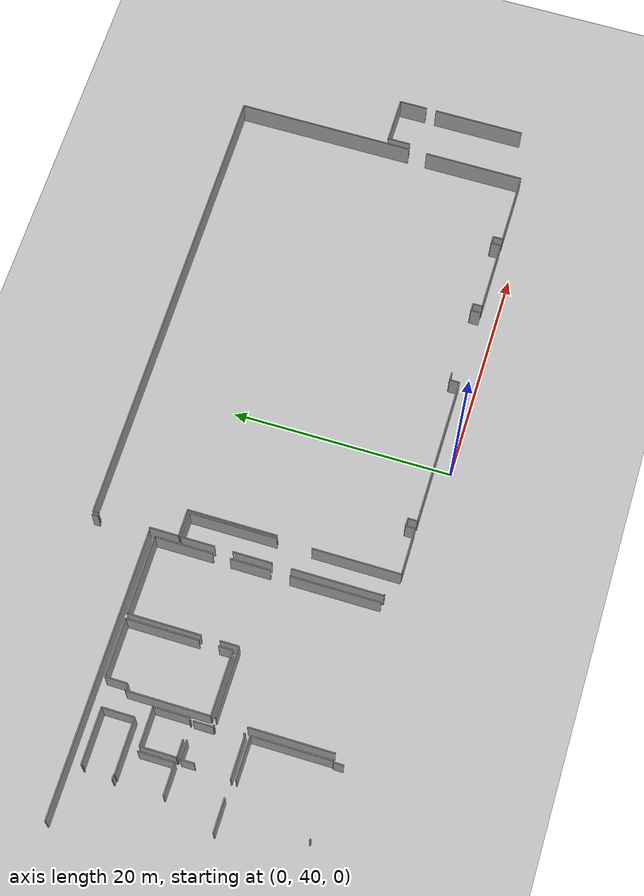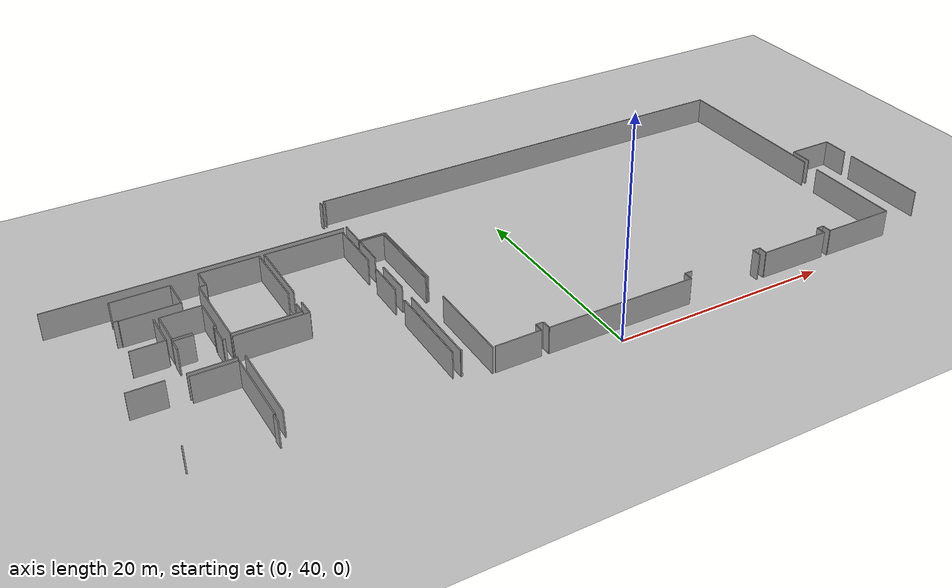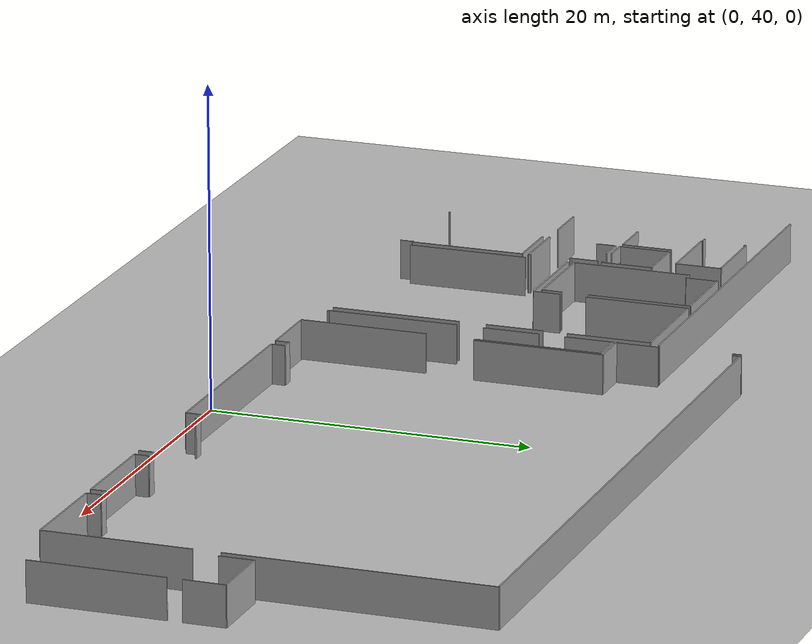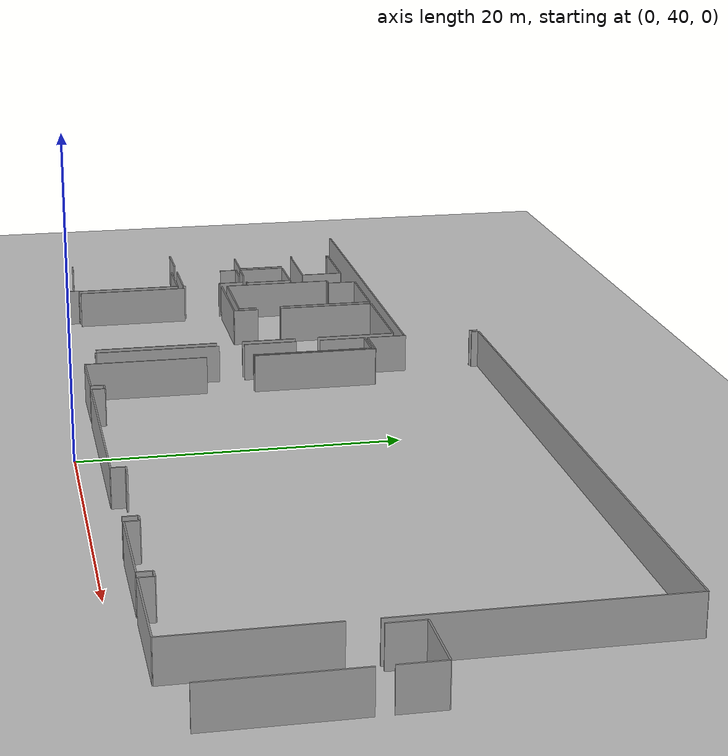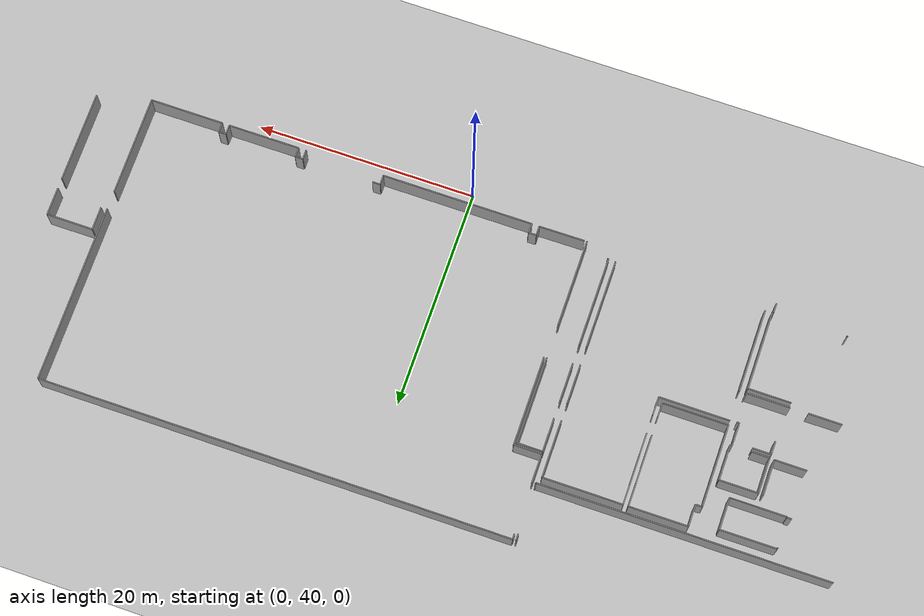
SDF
<sdf version="1.6">
 <world name="default">
  <model name="ground_plane">
   <static>1</static>
   <link name="link">
    <collision name="collision">
     <geometry><plane><normal>0 0 1</normal><size>100 100</size></plane></geometry>
     <surface><friction><ode><mu>100</mu><mu2>50</mu2></ode></friction></surface>
    </collision>
    <visual name="visual">
     <cast_shadows>0</cast_shadows>
     <geometry><plane><normal>0 0 1</normal><size>100 100</size></plane></geometry>
     <material>
      <script><uri>file://media/materials/scripts/gazebo.material</uri><name>Gazebo/Grey</name></script>
     </material>
    </visual>
   </link>
  </model>
  <model name="0510035520_A_40_1_103">
   <static>1</static>
   <link name="Wall_127">
    <collision name="Wall_127_Collision">
     <geometry><box><size>0.571569977348 0.1 2.5</size></box></geometry>
     <pose>0.285784988674 0 1.25 0 0 0</pose>
    </collision>
    <visual name="Wall_127_Visual">
     <pose>0.285784988674 0 1.25 0 0 0</pose>
     <geometry><box><size>0.571569977348 0.1 2.5</size></box></geometry>
     <material>
      <script><uri>file://media/materials/scripts/gazebo.material</uri><name>Gazebo/Grey</name></script>
      <ambient>1 1 1 1</ambient>
     </material>
    </visual>
    <pose>98.6663790204 -0.120303805179 0 0 0 -1.57079632679</pose>
   </link>
   <link name="Wall_128">
    <collision name="Wall_128_Collision">
     <geometry><box><size>0.0720807609089 0.1 2.5</size></box></geometry>
     <pose>0.0360403804544 0 1.25 0 0 0</pose>
    </collision>
    <visual name="Wall_128_Visual">
     <pose>0.0360403804544 0 1.25 0 0 0</pose>
     <geometry><box><size>0.0720807609089 0.1 2.5</size></box></geometry>
     <material>
      <script><uri>file://media/materials/scripts/gazebo.material</uri><name>Gazebo/Grey</name></script>
      <ambient>1 1 1 1</ambient>
     </material>
    </visual>
    <pose>98.6663790204 -5.25428138146 0 0 0 -1.57079632679</pose>
   </link>
   <link name="Wall_129">
    <collision name="Wall_129_Collision">
     <geometry><box><size>26.1229306921 0.1 2.5</size></box></geometry>
     <pose>13.061465346 0 1.25 0 0 0</pose>
    </collision>
    <visual name="Wall_129_Visual">
     <pose>13.061465346 0 1.25 0 0 0</pose>
     <geometry><box><size>26.1229306921 0.1 2.5</size></box></geometry>
     <material>
      <script><uri>file://media/materials/scripts/gazebo.material</uri><name>Gazebo/Grey</name></script>
      <ambient>1 1 1 1</ambient>
     </material>
    </visual>
    <pose>98.6663790204 -5.32636214237 0 0 0 3.14159265359</pose>
   </link>
   <link name="Wall_132">
    <collision name="Wall_132_Collision">
     <geometry><box><size>8.12253729355 0.1 2.5</size></box></geometry>
     <pose>4.06126864677 0 1.25 0 0 0</pose>
    </collision>
    <visual name="Wall_132_Visual">
     <pose>4.06126864677 0 1.25 0 0 0</pose>
     <geometry><box><size>8.12253729355 0.1 2.5</size></box></geometry>
     <material>
      <script><uri>file://media/materials/scripts/gazebo.material</uri><name>Gazebo/Grey</name></script>
      <ambient>1 1 1 1</ambient>
     </material>
    </visual>
    <pose>101.475244446 -15.9993908668 0 0 0 1.57079632679</pose>
   </link>
   <link name="Wall_133">
    <collision name="Wall_133_Collision">
     <geometry><box><size>2.49769988769 0.1 2.5</size></box></geometry>
     <pose>1.24884994385 0 1.25 0 0 0</pose>
    </collision>
    <visual name="Wall_133_Visual">
     <pose>1.24884994385 0 1.25 0 0 0</pose>
     <geometry><box><size>2.49769988769 0.1 2.5</size></box></geometry>
     <material>
      <script><uri>file://media/materials/scripts/gazebo.material</uri><name>Gazebo/Grey</name></script>
      <ambient>1 1 1 1</ambient>
     </material>
    </visual>
    <pose>101.475244446 -7.87685357326 0 0 0 3.14159265359</pose>
   </link>
   <link name="Wall_134">
    <collision name="Wall_134_Collision">
     <geometry><box><size>2.64465326997 0.1 2.5</size></box></geometry>
     <pose>1.32232663498 0 1.25 0 0 0</pose>
    </collision>
    <visual name="Wall_134_Visual">
     <pose>1.32232663498 0 1.25 0 0 0</pose>
     <geometry><box><size>2.64465326997 0.1 2.5</size></box></geometry>
     <material>
      <script><uri>file://media/materials/scripts/gazebo.material</uri><name>Gazebo/Grey</name></script>
      <ambient>1 1 1 1</ambient>
     </material>
    </visual>
    <pose>98.9775445587 -7.87685357326 0 0 0 1.57079632679</pose>
   </link>
   <link name="Wall_135">
    <collision name="Wall_135_Collision">
     <geometry><box><size>0.496697355981 0.1 2.5</size></box></geometry>
     <pose>0.248348677991 0 1.25 0 0 0</pose>
    </collision>
    <visual name="Wall_135_Visual">
     <pose>0.248348677991 0 1.25 0 0 0</pose>
     <geometry><box><size>0.496697355981 0.1 2.5</size></box></geometry>
     <material>
      <script><uri>file://media/materials/scripts/gazebo.material</uri><name>Gazebo/Grey</name></script>
      <ambient>1 1 1 1</ambient>
     </material>
    </visual>
    <pose>98.9775445587 -0.608371774291 0 0 0 1.57079632679</pose>
   </link>
   <link name="Wall_136">
    <collision name="Wall_136_Collision">
     <geometry><box><size>42.7565814938 0.1 2.5</size></box></geometry>
     <pose>21.3782907469 0 1.25 0 0 0</pose>
    </collision>
    <visual name="Wall_136_Visual">
     <pose>21.3782907469 0 1.25 0 0 0</pose>
     <geometry><box><size>42.7565814938 0.1 2.5</size></box></geometry>
     <material>
      <script><uri>file://media/materials/scripts/gazebo.material</uri><name>Gazebo/Grey</name></script>
      <ambient>1 1 1 1</ambient>
     </material>
    </visual>
    <pose>98.9775445587 -0.11167441831 0 0 0 0.0</pose>
   </link>
   <link name="Wall_137">
    <collision name="Wall_137_Collision">
     <geometry><box><size>16.2113184561 0.1 2.5</size></box></geometry>
     <pose>8.10565922805 0 1.25 0 0 0</pose>
    </collision>
    <visual name="Wall_137_Visual">
     <pose>8.10565922805 0 1.25 0 0 0</pose>
     <geometry><box><size>16.2113184561 0.1 2.5</size></box></geometry>
     <material>
      <script><uri>file://media/materials/scripts/gazebo.material</uri><name>Gazebo/Grey</name></script>
      <ambient>1 1 1 1</ambient>
     </material>
    </visual>
    <pose>141.734126052 -0.11167441831 0 0 0 -1.57079632679</pose>
   </link>
   <link name="Wall_138">
    <collision name="Wall_138_Collision">
     <geometry><box><size>9.09867323177 0.1 2.5</size></box></geometry>
     <pose>4.54933661588 0 1.25 0 0 0</pose>
    </collision>
    <visual name="Wall_138_Visual">
     <pose>4.54933661588 0 1.25 0 0 0</pose>
     <geometry><box><size>9.09867323177 0.1 2.5</size></box></geometry>
     <material>
      <script><uri>file://media/materials/scripts/gazebo.material</uri><name>Gazebo/Grey</name></script>
      <ambient>1 1 1 1</ambient>
     </material>
    </visual>
    <pose>141.734126052 -18.0090227854 0 0 0 -1.57079632679</pose>
   </link>
   <link name="Wall_139">
    <collision name="Wall_139_Collision">
     <geometry><box><size>6.67330791048 0.1 2.5</size></box></geometry>
     <pose>3.33665395524 0 1.25 0 0 0</pose>
    </collision>
    <visual name="Wall_139_Visual">
     <pose>3.33665395524 0 1.25 0 0 0</pose>
     <geometry><box><size>6.67330791048 0.1 2.5</size></box></geometry>
     <material>
      <script><uri>file://media/materials/scripts/gazebo.material</uri><name>Gazebo/Grey</name></script>
      <ambient>1 1 1 1</ambient>
     </material>
    </visual>
    <pose>141.734126052 -27.1076960172 0 0 0 3.14159265359</pose>
   </link>
   <link name="Wall_140">
    <collision name="Wall_140_Collision">
     <geometry><box><size>0.878167016707 0.1 2.5</size></box></geometry>
     <pose>0.439083508353 0 1.25 0 0 0</pose>
    </collision>
    <visual name="Wall_140_Visual">
     <pose>0.439083508353 0 1.25 0 0 0</pose>
     <geometry><box><size>0.878167016707 0.1 2.5</size></box></geometry>
     <material>
      <script><uri>file://media/materials/scripts/gazebo.material</uri><name>Gazebo/Grey</name></script>
      <ambient>1 1 1 1</ambient>
     </material>
    </visual>
    <pose>135.060818142 -27.1076960172 0 0 0 1.57079632679</pose>
   </link>
   <link name="Wall_141">
    <collision name="Wall_141_Collision">
     <geometry><box><size>0.672076953826 0.1 2.5</size></box></geometry>
     <pose>0.336038476913 0 1.25 0 0 0</pose>
    </collision>
    <visual name="Wall_141_Visual">
     <pose>0.336038476913 0 1.25 0 0 0</pose>
     <geometry><box><size>0.672076953826 0.1 2.5</size></box></geometry>
     <material>
      <script><uri>file://media/materials/scripts/gazebo.material</uri><name>Gazebo/Grey</name></script>
      <ambient>1 1 1 1</ambient>
     </material>
    </visual>
    <pose>135.060818142 -26.2295290005 0 0 0 3.14159265359</pose>
   </link>
   <link name="Wall_142">
    <collision name="Wall_142_Collision">
     <geometry><box><size>0.87131426831 0.1 2.5</size></box></geometry>
     <pose>0.435657134155 0 1.25 0 0 0</pose>
    </collision>
    <visual name="Wall_142_Visual">
     <pose>0.435657134155 0 1.25 0 0 0</pose>
     <geometry><box><size>0.87131426831 0.1 2.5</size></box></geometry>
     <material>
      <script><uri>file://media/materials/scripts/gazebo.material</uri><name>Gazebo/Grey</name></script>
      <ambient>1 1 1 1</ambient>
     </material>
    </visual>
    <pose>134.388741188 -26.2295290005 0 0 0 -1.57079632679</pose>
   </link>
   <link name="Wall_143">
    <collision name="Wall_143_Collision">
     <geometry><box><size>6.50478106103 0.1 2.5</size></box></geometry>
     <pose>3.25239053052 0 1.25 0 0 0</pose>
    </collision>
    <visual name="Wall_143_Visual">
     <pose>3.25239053052 0 1.25 0 0 0</pose>
     <geometry><box><size>6.50478106103 0.1 2.5</size></box></geometry>
     <material>
      <script><uri>file://media/materials/scripts/gazebo.material</uri><name>Gazebo/Grey</name></script>
      <ambient>1 1 1 1</ambient>
     </material>
    </visual>
    <pose>134.388741188 -27.1008432688 0 0 0 3.14159265359</pose>
   </link>
   <link name="Wall_144">
    <collision name="Wall_144_Collision">
     <geometry><box><size>0.854563105564 0.1 2.5</size></box></geometry>
     <pose>0.427281552782 0 1.25 0 0 0</pose>
    </collision>
    <visual name="Wall_144_Visual">
     <pose>0.427281552782 0 1.25 0 0 0</pose>
     <geometry><box><size>0.854563105564 0.1 2.5</size></box></geometry>
     <material>
      <script><uri>file://media/materials/scripts/gazebo.material</uri><name>Gazebo/Grey</name></script>
      <ambient>1 1 1 1</ambient>
     </material>
    </visual>
    <pose>127.883960127 -27.1008432688 0 0 0 1.57079632679</pose>
   </link>
   <link name="Wall_145">
    <collision name="Wall_145_Collision">
     <geometry><box><size>0.688574311077 0.1 2.5</size></box></geometry>
     <pose>0.344287155538 0 1.25 0 0 0</pose>
    </collision>
    <visual name="Wall_145_Visual">
     <pose>0.344287155538 0 1.25 0 0 0</pose>
     <geometry><box><size>0.688574311077 0.1 2.5</size></box></geometry>
     <material>
      <script><uri>file://media/materials/scripts/gazebo.material</uri><name>Gazebo/Grey</name></script>
      <ambient>1 1 1 1</ambient>
     </material>
    </visual>
    <pose>127.883960127 -26.2462801632 0 0 0 3.14159265359</pose>
   </link>
   <link name="Wall_146">
    <collision name="Wall_146_Collision">
     <geometry><box><size>0.887811625561 0.1 2.5</size></box></geometry>
     <pose>0.44390581278 0 1.25 0 0 0</pose>
    </collision>
    <visual name="Wall_146_Visual">
     <pose>0.44390581278 0 1.25 0 0 0</pose>
     <geometry><box><size>0.887811625561 0.1 2.5</size></box></geometry>
     <material>
      <script><uri>file://media/materials/scripts/gazebo.material</uri><name>Gazebo/Grey</name></script>
      <ambient>1 1 1 1</ambient>
     </material>
    </visual>
    <pose>127.195385816 -26.2462801632 0 0 0 -1.57079632679</pose>
   </link>
   <link name="Wall_149">
    <collision name="Wall_149_Collision">
     <geometry><box><size>0.7068483068 0.1 2.5</size></box></geometry>
     <pose>0.3534241534 0 1.25 0 0 0</pose>
    </collision>
    <visual name="Wall_149_Visual">
     <pose>0.3534241534 0 1.25 0 0 0</pose>
     <geometry><box><size>0.7068483068 0.1 2.5</size></box></geometry>
     <material>
      <script><uri>file://media/materials/scripts/gazebo.material</uri><name>Gazebo/Grey</name></script>
      <ambient>1 1 1 1</ambient>
     </material>
    </visual>
    <pose>120.692127588 -26.2379045818 0 0 0 3.14159265359</pose>
   </link>
   <link name="Wall_150">
    <collision name="Wall_150_Collision">
     <geometry><box><size>0.87131426831 0.1 2.5</size></box></geometry>
     <pose>0.435657134155 0 1.25 0 0 0</pose>
    </collision>
    <visual name="Wall_150_Visual">
     <pose>0.435657134155 0 1.25 0 0 0</pose>
     <geometry><box><size>0.87131426831 0.1 2.5</size></box></geometry>
     <material>
      <script><uri>file://media/materials/scripts/gazebo.material</uri><name>Gazebo/Grey</name></script>
      <ambient>1 1 1 1</ambient>
     </material>
    </visual>
    <pose>119.985279281 -26.2379045818 0 0 0 -1.57079632679</pose>
   </link>
   <link name="Wall_151">
    <collision name="Wall_151_Collision">
     <geometry><box><size>13.6981364331 0.1 2.5</size></box></geometry>
     <pose>6.84906821657 0 1.25 0 0 0</pose>
    </collision>
    <visual name="Wall_151_Visual">
     <pose>6.84906821657 0 1.25 0 0 0</pose>
     <geometry><box><size>13.6981364331 0.1 2.5</size></box></geometry>
     <material>
      <script><uri>file://media/materials/scripts/gazebo.material</uri><name>Gazebo/Grey</name></script>
      <ambient>1 1 1 1</ambient>
     </material>
    </visual>
    <pose>119.985279281 -27.1092188501 0 0 0 3.14159265359</pose>
   </link>
   <link name="Wall_152">
    <collision name="Wall_152_Collision">
     <geometry><box><size>0.854563105564 0.1 2.5</size></box></geometry>
     <pose>0.427281552782 0 1.25 0 0 0</pose>
    </collision>
    <visual name="Wall_152_Visual">
     <pose>0.427281552782 0 1.25 0 0 0</pose>
     <geometry><box><size>0.854563105564 0.1 2.5</size></box></geometry>
     <material>
      <script><uri>file://media/materials/scripts/gazebo.material</uri><name>Gazebo/Grey</name></script>
      <ambient>1 1 1 1</ambient>
     </material>
    </visual>
    <pose>106.287142848 -27.1092188501 0 0 0 1.57079632679</pose>
   </link>
   <link name="Wall_153">
    <collision name="Wall_153_Collision">
     <geometry><box><size>0.69694989245 0.1 2.5</size></box></geometry>
     <pose>0.348474946225 0 1.25 0 0 0</pose>
    </collision>
    <visual name="Wall_153_Visual">
     <pose>0.348474946225 0 1.25 0 0 0</pose>
     <geometry><box><size>0.69694989245 0.1 2.5</size></box></geometry>
     <material>
      <script><uri>file://media/materials/scripts/gazebo.material</uri><name>Gazebo/Grey</name></script>
      <ambient>1 1 1 1</ambient>
     </material>
    </visual>
    <pose>106.287142848 -26.2546557446 0 0 0 3.14159265359</pose>
   </link>
   <link name="Wall_154">
    <collision name="Wall_154_Collision">
     <geometry><box><size>0.837811942818 0.1 2.5</size></box></geometry>
     <pose>0.418905971409 0 1.25 0 0 0</pose>
    </collision>
    <visual name="Wall_154_Visual">
     <pose>0.418905971409 0 1.25 0 0 0</pose>
     <geometry><box><size>0.837811942818 0.1 2.5</size></box></geometry>
     <material>
      <script><uri>file://media/materials/scripts/gazebo.material</uri><name>Gazebo/Grey</name></script>
      <ambient>1 1 1 1</ambient>
     </material>
    </visual>
    <pose>105.590192956 -26.2546557446 0 0 0 -1.57079632679</pose>
   </link>
   <link name="Wall_155">
    <collision name="Wall_155_Collision">
     <geometry><box><size>4.11507875995 0.1 2.5</size></box></geometry>
     <pose>2.05753937997 0 1.25 0 0 0</pose>
    </collision>
    <visual name="Wall_155_Visual">
     <pose>2.05753937997 0 1.25 0 0 0</pose>
     <geometry><box><size>4.11507875995 0.1 2.5</size></box></geometry>
     <material>
      <script><uri>file://media/materials/scripts/gazebo.material</uri><name>Gazebo/Grey</name></script>
      <ambient>1 1 1 1</ambient>
     </material>
    </visual>
    <pose>105.590192956 -27.0924676874 0 0 0 -3.13363624343</pose>
   </link>
   <link name="Wall_157">
    <collision name="Wall_157_Collision">
     <geometry><box><size>2.11115411704 0.1 2.5</size></box></geometry>
     <pose>1.05557705852 0 1.25 0 0 0</pose>
    </collision>
    <visual name="Wall_157_Visual">
     <pose>1.05557705852 0 1.25 0 0 0</pose>
     <geometry><box><size>2.11115411704 0.1 2.5</size></box></geometry>
     <material>
      <script><uri>file://media/materials/scripts/gazebo.material</uri><name>Gazebo/Grey</name></script>
      <ambient>1 1 1 1</ambient>
     </material>
    </visual>
    <pose>142.281838313 -16.2582724729 0 0 0 1.57079632679</pose>
   </link>
   <link name="Wall_158">
    <collision name="Wall_158_Collision">
     <geometry><box><size>4.22053159561 0.1 2.5</size></box></geometry>
     <pose>2.11026579781 0 1.25 0 0 0</pose>
    </collision>
    <visual name="Wall_158_Visual">
     <pose>2.11026579781 0 1.25 0 0 0</pose>
     <geometry><box><size>4.22053159561 0.1 2.5</size></box></geometry>
     <material>
      <script><uri>file://media/materials/scripts/gazebo.material</uri><name>Gazebo/Grey</name></script>
      <ambient>1 1 1 1</ambient>
     </material>
    </visual>
    <pose>142.281838313 -14.1471183558 0 0 0 0.0</pose>
   </link>
   <link name="Wall_159">
    <collision name="Wall_159_Collision">
     <geometry><box><size>2.55125284738 0.1 2.5</size></box></geometry>
     <pose>1.27562642369 0 1.25 0 0 0</pose>
    </collision>
    <visual name="Wall_159_Visual">
     <pose>1.27562642369 0 1.25 0 0 0</pose>
     <geometry><box><size>2.55125284738 0.1 2.5</size></box></geometry>
     <material>
      <script><uri>file://media/materials/scripts/gazebo.material</uri><name>Gazebo/Grey</name></script>
      <ambient>1 1 1 1</ambient>
     </material>
    </visual>
    <pose>146.502369909 -14.1471183558 0 0 0 -1.57079632679</pose>
   </link>
   <link name="Wall_160">
    <collision name="Wall_160_Collision">
     <geometry><box><size>8.33852577078 0.1 2.5</size></box></geometry>
     <pose>4.16926288539 0 1.25 0 0 0</pose>
    </collision>
    <visual name="Wall_160_Visual">
     <pose>4.16926288539 0 1.25 0 0 0</pose>
     <geometry><box><size>8.33852577078 0.1 2.5</size></box></geometry>
     <material>
      <script><uri>file://media/materials/scripts/gazebo.material</uri><name>Gazebo/Grey</name></script>
      <ambient>1 1 1 1</ambient>
     </material>
    </visual>
    <pose>146.502369909 -17.6090253234 0 0 0 -1.57079632679</pose>
   </link>
   <link name="Wall_174">
    <collision name="Wall_174_Collision">
     <geometry><box><size>3.84210760084 0.1 2.5</size></box></geometry>
     <pose>1.92105380042 0 1.25 0 0 0</pose>
    </collision>
    <visual name="Wall_174_Visual">
     <pose>1.92105380042 0 1.25 0 0 0</pose>
     <geometry><box><size>3.84210760084 0.1 2.5</size></box></geometry>
     <material>
      <script><uri>file://media/materials/scripts/gazebo.material</uri><name>Gazebo/Grey</name></script>
      <ambient>1 1 1 1</ambient>
     </material>
    </visual>
    <pose>80.3040589844 -19.0430263767 0 0 0 0.0</pose>
   </link>
   <link name="Wall_175">
    <collision name="Wall_175_Collision">
     <geometry><box><size>7.21162936783 0.1 2.5</size></box></geometry>
     <pose>3.60581468392 0 1.25 0 0 0</pose>
    </collision>
    <visual name="Wall_175_Visual">
     <pose>3.60581468392 0 1.25 0 0 0</pose>
     <geometry><box><size>7.21162936783 0.1 2.5</size></box></geometry>
     <material>
      <script><uri>file://media/materials/scripts/gazebo.material</uri><name>Gazebo/Grey</name></script>
      <ambient>1 1 1 1</ambient>
     </material>
    </visual>
    <pose>84.1461665852 -19.0430263767 0 0 0 -1.57079632679</pose>
   </link>
   <link name="Wall_176">
    <collision name="Wall_176_Collision">
     <geometry><box><size>0.111420612813 0.1 2.5</size></box></geometry>
     <pose>0.0557103064067 0 1.25 0 0 0</pose>
    </collision>
    <visual name="Wall_176_Visual">
     <pose>0.0557103064067 0 1.25 0 0 0</pose>
     <geometry><box><size>0.111420612813 0.1 2.5</size></box></geometry>
     <material>
      <script><uri>file://media/materials/scripts/gazebo.material</uri><name>Gazebo/Grey</name></script>
      <ambient>1 1 1 1</ambient>
     </material>
    </visual>
    <pose>84.1461665852 -26.2546557446 0 0 0 3.14159265359</pose>
   </link>
   <link name="Wall_177">
    <collision name="Wall_177_Collision">
     <geometry><box><size>0.862684881441 0.1 2.5</size></box></geometry>
     <pose>0.431342440721 0 1.25 0 0 0</pose>
    </collision>
    <visual name="Wall_177_Visual">
     <pose>0.431342440721 0 1.25 0 0 0</pose>
     <geometry><box><size>0.862684881441 0.1 2.5</size></box></geometry>
     <material>
      <script><uri>file://media/materials/scripts/gazebo.material</uri><name>Gazebo/Grey</name></script>
      <ambient>1 1 1 1</ambient>
     </material>
    </visual>
    <pose>84.0347459724 -26.2546557446 0 0 0 -1.57079632679</pose>
   </link>
   <link name="Wall_181">
    <collision name="Wall_181_Collision">
     <geometry><box><size>0.112481659409 0.1 2.5</size></box></geometry>
     <pose>0.0562408297047 0 1.25 0 0 0</pose>
    </collision>
    <visual name="Wall_181_Visual">
     <pose>0.0562408297047 0 1.25 0 0 0</pose>
     <geometry><box><size>0.112481659409 0.1 2.5</size></box></geometry>
     <material>
      <script><uri>file://media/materials/scripts/gazebo.material</uri><name>Gazebo/Grey</name></script>
      <ambient>1 1 1 1</ambient>
     </material>
    </visual>
    <pose>77.4967163914 -26.2711531018 0 0 0 3.02171565878</pose>
   </link>
   <link name="Wall_182">
    <collision name="Wall_182_Collision">
     <geometry><box><size>8.1057861308 0.1 2.5</size></box></geometry>
     <pose>4.0528930654 0 1.25 0 0 0</pose>
    </collision>
    <visual name="Wall_182_Visual">
     <pose>4.0528930654 0 1.25 0 0 0</pose>
     <geometry><box><size>8.1057861308 0.1 2.5</size></box></geometry>
     <material>
      <script><uri>file://media/materials/scripts/gazebo.material</uri><name>Gazebo/Grey</name></script>
      <ambient>1 1 1 1</ambient>
     </material>
    </visual>
    <pose>98.3219649622 -26.1795293177 0 0 0 1.57079632679</pose>
   </link>
   <link name="Wall_183">
    <collision name="Wall_183_Collision">
     <geometry><box><size>3.61545929277 0.1 2.5</size></box></geometry>
     <pose>1.80772964639 0 1.25 0 0 0</pose>
    </collision>
    <visual name="Wall_183_Visual">
     <pose>1.80772964639 0 1.25 0 0 0</pose>
     <geometry><box><size>3.61545929277 0.1 2.5</size></box></geometry>
     <material>
      <script><uri>file://media/materials/scripts/gazebo.material</uri><name>Gazebo/Grey</name></script>
      <ambient>1 1 1 1</ambient>
     </material>
    </visual>
    <pose>98.3219649622 -16.3554799779 0 0 0 1.57079632679</pose>
   </link>
   <link name="Wall_184">
    <collision name="Wall_184_Collision">
     <geometry><box><size>5.23423074727 0.1 2.5</size></box></geometry>
     <pose>2.61711537363 0 1.25 0 0 0</pose>
    </collision>
    <visual name="Wall_184_Visual">
     <pose>2.61711537363 0 1.25 0 0 0</pose>
     <geometry><box><size>5.23423074727 0.1 2.5</size></box></geometry>
     <material>
      <script><uri>file://media/materials/scripts/gazebo.material</uri><name>Gazebo/Grey</name></script>
      <ambient>1 1 1 1</ambient>
     </material>
    </visual>
    <pose>98.3219649622 -11.1897767146 0 0 0 1.57079632679</pose>
   </link>
   <link name="Wall_185">
    <collision name="Wall_185_Collision">
     <geometry><box><size>7.19335537211 0.1 2.5</size></box></geometry>
     <pose>3.59667768606 0 1.25 0 0 0</pose>
    </collision>
    <visual name="Wall_185_Visual">
     <pose>3.59667768606 0 1.25 0 0 0</pose>
     <geometry><box><size>7.19335537211 0.1 2.5</size></box></geometry>
     <material>
      <script><uri>file://media/materials/scripts/gazebo.material</uri><name>Gazebo/Grey</name></script>
      <ambient>1 1 1 1</ambient>
     </material>
    </visual>
    <pose>98.3219649622 -5.95554596735 0 0 0 3.14159265359</pose>
   </link>
   <link name="Wall_186">
    <collision name="Wall_186_Collision">
     <geometry><box><size>6.53092302714 0.1 2.5</size></box></geometry>
     <pose>3.26546151357 0 1.25 0 0 0</pose>
    </collision>
    <visual name="Wall_186_Visual">
     <pose>3.26546151357 0 1.25 0 0 0</pose>
     <geometry><box><size>6.53092302714 0.1 2.5</size></box></geometry>
     <material>
      <script><uri>file://media/materials/scripts/gazebo.material</uri><name>Gazebo/Grey</name></script>
      <ambient>1 1 1 1</ambient>
     </material>
    </visual>
    <pose>91.12860959 -5.95554596735 0 0 0 -1.57079632679</pose>
   </link>
   <link name="Wall_187">
    <collision name="Wall_187_Collision">
     <geometry><box><size>1.69542071434 0.1 2.5</size></box></geometry>
     <pose>0.847710357168 0 1.25 0 0 0</pose>
    </collision>
    <visual name="Wall_187_Visual">
     <pose>0.847710357168 0 1.25 0 0 0</pose>
     <geometry><box><size>1.69542071434 0.1 2.5</size></box></geometry>
     <material>
      <script><uri>file://media/materials/scripts/gazebo.material</uri><name>Gazebo/Grey</name></script>
      <ambient>1 1 1 1</ambient>
     </material>
    </visual>
    <pose>91.12860959 -14.1514330493 0 0 0 -1.57079632679</pose>
   </link>
   <link name="Wall_188">
    <collision name="Wall_188_Collision">
     <geometry><box><size>6.35554342929 0.1 2.5</size></box></geometry>
     <pose>3.17777171465 0 1.25 0 0 0</pose>
    </collision>
    <visual name="Wall_188_Visual">
     <pose>3.17777171465 0 1.25 0 0 0</pose>
     <geometry><box><size>6.35554342929 0.1 2.5</size></box></geometry>
     <material>
      <script><uri>file://media/materials/scripts/gazebo.material</uri><name>Gazebo/Grey</name></script>
      <ambient>1 1 1 1</ambient>
     </material>
    </visual>
    <pose>91.12860959 -15.8468537636 0 0 0 3.14159265359</pose>
   </link>
   <link name="Wall_189">
    <collision name="Wall_189_Collision">
     <geometry><box><size>7.56036099945 0.1 2.5</size></box></geometry>
     <pose>3.78018049972 0 1.25 0 0 0</pose>
    </collision>
    <visual name="Wall_189_Visual">
     <pose>3.78018049972 0 1.25 0 0 0</pose>
     <geometry><box><size>7.56036099945 0.1 2.5</size></box></geometry>
     <material>
      <script><uri>file://media/materials/scripts/gazebo.material</uri><name>Gazebo/Grey</name></script>
      <ambient>1 1 1 1</ambient>
     </material>
    </visual>
    <pose>84.7730661607 -18.6191711982 0 0 0 -1.56992349232</pose>
   </link>
   <link name="Wall_190">
    <collision name="Wall_190_Collision">
     <geometry><box><size>7.47381044537 0.1 2.5</size></box></geometry>
     <pose>3.73690522268 0 1.25 0 0 0</pose>
    </collision>
    <visual name="Wall_190_Visual">
     <pose>3.73690522268 0 1.25 0 0 0</pose>
     <geometry><box><size>7.47381044537 0.1 2.5</size></box></geometry>
     <material>
      <script><uri>file://media/materials/scripts/gazebo.material</uri><name>Gazebo/Grey</name></script>
      <ambient>1 1 1 1</ambient>
     </material>
    </visual>
    <pose>84.7684976618 -15.4285823059 0 0 0 1.57079632679</pose>
   </link>
   <link name="Wall_191">
    <collision name="Wall_191_Collision">
     <geometry><box><size>0.605579913833 0.1 2.5</size></box></geometry>
     <pose>0.302789956917 0 1.25 0 0 0</pose>
    </collision>
    <visual name="Wall_191_Visual">
     <pose>0.302789956917 0 1.25 0 0 0</pose>
     <geometry><box><size>0.605579913833 0.1 2.5</size></box></geometry>
     <material>
      <script><uri>file://media/materials/scripts/gazebo.material</uri><name>Gazebo/Grey</name></script>
      <ambient>1 1 1 1</ambient>
     </material>
    </visual>
    <pose>84.7684976618 -7.95477186058 0 0 0 0.0</pose>
   </link>
   <link name="Wall_192">
    <collision name="Wall_192_Collision">
     <geometry><box><size>1.9949111998 0.1 2.5</size></box></geometry>
     <pose>0.997455599901 0 1.25 0 0 0</pose>
    </collision>
    <visual name="Wall_192_Visual">
     <pose>0.997455599901 0 1.25 0 0 0</pose>
     <geometry><box><size>1.9949111998 0.1 2.5</size></box></geometry>
     <material>
      <script><uri>file://media/materials/scripts/gazebo.material</uri><name>Gazebo/Grey</name></script>
      <ambient>1 1 1 1</ambient>
     </material>
    </visual>
    <pose>85.3740775756 -7.95477186058 0 0 0 1.57079632679</pose>
   </link>
   <link name="Wall_193">
    <collision name="Wall_193_Collision">
     <geometry><box><size>5.29336742787 0.1 2.5</size></box></geometry>
     <pose>2.64668371394 0 1.25 0 0 0</pose>
    </collision>
    <visual name="Wall_193_Visual">
     <pose>2.64668371394 0 1.25 0 0 0</pose>
     <geometry><box><size>5.29336742787 0.1 2.5</size></box></geometry>
     <material>
      <script><uri>file://media/materials/scripts/gazebo.material</uri><name>Gazebo/Grey</name></script>
      <ambient>1 1 1 1</ambient>
     </material>
    </visual>
    <pose>85.3740775756 -5.95986066078 0 0 0 0.0</pose>
   </link>
   <link name="Wall_194">
    <collision name="Wall_194_Collision">
     <geometry><box><size>6.51975558531 0.1 2.5</size></box></geometry>
     <pose>3.25987779265 0 1.25 0 0 0</pose>
    </collision>
    <visual name="Wall_194_Visual">
     <pose>3.25987779265 0 1.25 0 0 0</pose>
     <geometry><box><size>6.51975558531 0.1 2.5</size></box></geometry>
     <material>
      <script><uri>file://media/materials/scripts/gazebo.material</uri><name>Gazebo/Grey</name></script>
      <ambient>1 1 1 1</ambient>
     </material>
    </visual>
    <pose>90.6674450035 -5.95986066078 0 0 0 -1.57079632679</pose>
   </link>
   <link name="Wall_195">
    <collision name="Wall_195_Collision">
     <geometry><box><size>1.24491595866 0.1 2.5</size></box></geometry>
     <pose>0.622457979328 0 1.25 0 0 0</pose>
    </collision>
    <visual name="Wall_195_Visual">
     <pose>0.622457979328 0 1.25 0 0 0</pose>
     <geometry><box><size>1.24491595866 0.1 2.5</size></box></geometry>
     <material>
      <script><uri>file://media/materials/scripts/gazebo.material</uri><name>Gazebo/Grey</name></script>
      <ambient>1 1 1 1</ambient>
     </material>
    </visual>
    <pose>90.6674450035 -14.1907729012 0 0 0 -1.57079632679</pose>
   </link>
   <link name="Wall_196">
    <collision name="Wall_196_Collision">
     <geometry><box><size>5.89895162239 0.1 2.5</size></box></geometry>
     <pose>2.9494758112 0 1.25 0 0 0</pose>
    </collision>
    <visual name="Wall_196_Visual">
     <pose>2.9494758112 0 1.25 0 0 0</pose>
     <geometry><box><size>5.89895162239 0.1 2.5</size></box></geometry>
     <material>
      <script><uri>file://media/materials/scripts/gazebo.material</uri><name>Gazebo/Grey</name></script>
      <ambient>1 1 1 1</ambient>
     </material>
    </visual>
    <pose>90.6674450035 -15.4356888598 0 0 0 3.14038793857</pose>
   </link>
   <link name="Wall_198">
    <collision name="Wall_198_Collision">
     <geometry><box><size>0.114466278767 0.1 2.5</size></box></geometry>
     <pose>0.0572331393836 0 1.25 0 0 0</pose>
    </collision>
    <visual name="Wall_198_Visual">
     <pose>0.0572331393836 0 1.25 0 0 0</pose>
     <geometry><box><size>0.114466278767 0.1 2.5</size></box></geometry>
     <material>
      <script><uri>file://media/materials/scripts/gazebo.material</uri><name>Gazebo/Grey</name></script>
      <ambient>1 1 1 1</ambient>
     </material>
    </visual>
    <pose>99.0861733111 -26.2384121928 0 0 0 3.14159265359</pose>
   </link>
   <link name="Wall_199">
    <collision name="Wall_199_Collision">
     <geometry><box><size>8.23928782178 0.1 2.5</size></box></geometry>
     <pose>4.11964391089 0 1.25 0 0 0</pose>
    </collision>
    <visual name="Wall_199_Visual">
     <pose>4.11964391089 0 1.25 0 0 0</pose>
     <geometry><box><size>8.23928782178 0.1 2.5</size></box></geometry>
     <material>
      <script><uri>file://media/materials/scripts/gazebo.material</uri><name>Gazebo/Grey</name></script>
      <ambient>1 1 1 1</ambient>
     </material>
    </visual>
    <pose>98.9717070323 -26.2384121928 0 0 0 1.57079632679</pose>
   </link>
   <link name="Wall_200">
    <collision name="Wall_200_Collision">
     <geometry><box><size>3.53195728453 0.1 2.5</size></box></geometry>
     <pose>1.76597864227 0 1.25 0 0 0</pose>
    </collision>
    <visual name="Wall_200_Visual">
     <pose>1.76597864227 0 1.25 0 0 0</pose>
     <geometry><box><size>3.53195728453 0.1 2.5</size></box></geometry>
     <material>
      <script><uri>file://media/materials/scripts/gazebo.material</uri><name>Gazebo/Grey</name></script>
      <ambient>1 1 1 1</ambient>
     </material>
    </visual>
    <pose>98.9717070323 -16.3087797666 0 0 0 1.57079632679</pose>
   </link>
   <link name="Wall_201">
    <collision name="Wall_201_Collision">
     <geometry><box><size>3.04744259237 0.1 2.5</size></box></geometry>
     <pose>1.52372129618 0 1.25 0 0 0</pose>
    </collision>
    <visual name="Wall_201_Visual">
     <pose>1.52372129618 0 1.25 0 0 0</pose>
     <geometry><box><size>3.04744259237 0.1 2.5</size></box></geometry>
     <material>
      <script><uri>file://media/materials/scripts/gazebo.material</uri><name>Gazebo/Grey</name></script>
      <ambient>1 1 1 1</ambient>
     </material>
    </visual>
    <pose>98.9717070323 -11.1438379198 0 0 0 1.57079632679</pose>
   </link>
   <link name="Wall_202">
    <collision name="Wall_202_Collision">
     <geometry><box><size>2.27079777413 0.1 2.5</size></box></geometry>
     <pose>1.13539888706 0 1.25 0 0 0</pose>
    </collision>
    <visual name="Wall_202_Visual">
     <pose>1.13539888706 0 1.25 0 0 0</pose>
     <geometry><box><size>2.27079777413 0.1 2.5</size></box></geometry>
     <material>
      <script><uri>file://media/materials/scripts/gazebo.material</uri><name>Gazebo/Grey</name></script>
      <ambient>1 1 1 1</ambient>
     </material>
    </visual>
    <pose>98.9717070323 -8.09639532744 0 0 0 0.0</pose>
   </link>
   <link name="Wall_203">
    <collision name="Wall_203_Collision">
     <geometry><box><size>7.95147238913 0.1 2.5</size></box></geometry>
     <pose>3.97573619457 0 1.25 0 0 0</pose>
    </collision>
    <visual name="Wall_203_Visual">
     <pose>3.97573619457 0 1.25 0 0 0</pose>
     <geometry><box><size>7.95147238913 0.1 2.5</size></box></geometry>
     <material>
      <script><uri>file://media/materials/scripts/gazebo.material</uri><name>Gazebo/Grey</name></script>
      <ambient>1 1 1 1</ambient>
     </material>
    </visual>
    <pose>101.242504806 -8.09639532744 0 0 0 -1.57079632679</pose>
   </link>
   <link name="Wall_204">
    <collision name="Wall_204_Collision">
     <geometry><box><size>8.01238570821 0.1 2.5</size></box></geometry>
     <pose>4.00619285411 0 1.25 0 0 0</pose>
    </collision>
    <visual name="Wall_204_Visual">
     <pose>4.00619285411 0 1.25 0 0 0</pose>
     <geometry><box><size>8.01238570821 0.1 2.5</size></box></geometry>
     <material>
      <script><uri>file://media/materials/scripts/gazebo.material</uri><name>Gazebo/Grey</name></script>
      <ambient>1 1 1 1</ambient>
     </material>
    </visual>
    <pose>101.242504806 -19.1394724653 0 0 0 -1.57079632679</pose>
   </link>
   <link name="Wall_206">
    <collision name="Wall_206_Collision">
     <geometry><box><size>3.17333011846 0.1 2.5</size></box></geometry>
     <pose>1.58666505923 0 1.25 0 0 0</pose>
    </collision>
    <visual name="Wall_206_Visual">
     <pose>1.58666505923 0 1.25 0 0 0</pose>
     <geometry><box><size>3.17333011846 0.1 2.5</size></box></geometry>
     <material>
      <script><uri>file://media/materials/scripts/gazebo.material</uri><name>Gazebo/Grey</name></script>
      <ambient>1 1 1 1</ambient>
     </material>
    </visual>
    <pose>80.6428893218 -13.7895064118 0 0 0 1.57079632679</pose>
   </link>
   <link name="Wall_207">
    <collision name="Wall_207_Collision">
     <geometry><box><size>3.48221140729 0.1 2.5</size></box></geometry>
     <pose>1.74110570364 0 1.25 0 0 0</pose>
    </collision>
    <visual name="Wall_207_Visual">
     <pose>1.74110570364 0 1.25 0 0 0</pose>
     <geometry><box><size>3.48221140729 0.1 2.5</size></box></geometry>
     <material>
      <script><uri>file://media/materials/scripts/gazebo.material</uri><name>Gazebo/Grey</name></script>
      <ambient>1 1 1 1</ambient>
     </material>
    </visual>
    <pose>80.6428893218 -10.6161762933 0 0 0 0.0</pose>
   </link>
   <link name="Wall_208">
    <collision name="Wall_208_Collision">
     <geometry><box><size>3.2372891035 0.1 2.5</size></box></geometry>
     <pose>1.61864455175 0 1.25 0 0 0</pose>
    </collision>
    <visual name="Wall_208_Visual">
     <pose>1.61864455175 0 1.25 0 0 0</pose>
     <geometry><box><size>3.2372891035 0.1 2.5</size></box></geometry>
     <material>
      <script><uri>file://media/materials/scripts/gazebo.material</uri><name>Gazebo/Grey</name></script>
      <ambient>1 1 1 1</ambient>
     </material>
    </visual>
    <pose>84.1251007291 -10.6161762933 0 0 0 -1.57079632679</pose>
   </link>
   <link name="Wall_209">
    <collision name="Wall_209_Collision">
     <geometry><box><size>0.209897145323 0.1 2.5</size></box></geometry>
     <pose>0.104948572661 0 1.25 0 0 0</pose>
    </collision>
    <visual name="Wall_209_Visual">
     <pose>0.104948572661 0 1.25 0 0 0</pose>
     <geometry><box><size>0.209897145323 0.1 2.5</size></box></geometry>
     <material>
      <script><uri>file://media/materials/scripts/gazebo.material</uri><name>Gazebo/Grey</name></script>
      <ambient>1 1 1 1</ambient>
     </material>
    </visual>
    <pose>84.1251007291 -13.8534653968 0 0 0 3.14159265359</pose>
   </link>
   <link name="Wall_210">
    <collision name="Wall_210_Collision">
     <geometry><box><size>1.5921218774 0.1 2.5</size></box></geometry>
     <pose>0.7960609387 0 1.25 0 0 0</pose>
    </collision>
    <visual name="Wall_210_Visual">
     <pose>0.7960609387 0 1.25 0 0 0</pose>
     <geometry><box><size>1.5921218774 0.1 2.5</size></box></geometry>
     <material>
      <script><uri>file://media/materials/scripts/gazebo.material</uri><name>Gazebo/Grey</name></script>
      <ambient>1 1 1 1</ambient>
     </material>
    </visual>
    <pose>82.2334883662 -13.8534653968 0 0 0 3.14159265359</pose>
   </link>
   <link name="Wall_211">
    <collision name="Wall_211_Collision">
     <geometry><box><size>0.0639771114273 0.1 2.5</size></box></geometry>
     <pose>0.0319885557136 0 1.25 0 0 0</pose>
    </collision>
    <visual name="Wall_211_Visual">
     <pose>0.0319885557136 0 1.25 0 0 0</pose>
     <geometry><box><size>0.0639771114273 0.1 2.5</size></box></geometry>
     <material>
      <script><uri>file://media/materials/scripts/gazebo.material</uri><name>Gazebo/Grey</name></script>
      <ambient>1 1 1 1</ambient>
     </material>
    </visual>
    <pose>80.6413664888 -13.8534653968 0 0 0 1.54699130061</pose>
   </link>
   <link name="Wall_212">
    <collision name="Wall_212_Collision">
     <geometry><box><size>5.04742990209 0.1 2.5</size></box></geometry>
     <pose>2.52371495105 0 1.25 0 0 0</pose>
    </collision>
    <visual name="Wall_212_Visual">
     <pose>2.52371495105 0 1.25 0 0 0</pose>
     <geometry><box><size>5.04742990209 0.1 2.5</size></box></geometry>
     <material>
      <script><uri>file://media/materials/scripts/gazebo.material</uri><name>Gazebo/Grey</name></script>
      <ambient>1 1 1 1</ambient>
     </material>
    </visual>
    <pose>77.7863084625 -6.55579596576 0 0 0 0.0</pose>
   </link>
   <link name="Wall_213">
    <collision name="Wall_213_Collision">
     <geometry><box><size>2.88957557376 0.1 2.5</size></box></geometry>
     <pose>1.44478778688 0 1.25 0 0 0</pose>
    </collision>
    <visual name="Wall_213_Visual">
     <pose>1.44478778688 0 1.25 0 0 0</pose>
     <geometry><box><size>2.88957557376 0.1 2.5</size></box></geometry>
     <material>
      <script><uri>file://media/materials/scripts/gazebo.material</uri><name>Gazebo/Grey</name></script>
      <ambient>1 1 1 1</ambient>
     </material>
    </visual>
    <pose>82.8337383646 -6.55579596576 0 0 0 -1.57079632679</pose>
   </link>
   <link name="Wall_214">
    <collision name="Wall_214_Collision">
     <geometry><box><size>5.04742990209 0.1 2.5</size></box></geometry>
     <pose>2.52371495105 0 1.25 0 0 0</pose>
    </collision>
    <visual name="Wall_214_Visual">
     <pose>2.52371495105 0 1.25 0 0 0</pose>
     <geometry><box><size>5.04742990209 0.1 2.5</size></box></geometry>
     <material>
      <script><uri>file://media/materials/scripts/gazebo.material</uri><name>Gazebo/Grey</name></script>
      <ambient>1 1 1 1</ambient>
     </material>
    </visual>
    <pose>82.8337383646 -9.44537153952 0 0 0 3.14159265359</pose>
   </link>
   <link name="Wall_215">
    <collision name="Wall_215_Collision">
     <geometry><box><size>0.0629437630472 0.1 2.5</size></box></geometry>
     <pose>0.0314718815236 0 1.25 0 0 0</pose>
    </collision>
    <visual name="Wall_215_Visual">
     <pose>0.0314718815236 0 1.25 0 0 0</pose>
     <geometry><box><size>0.0629437630472 0.1 2.5</size></box></geometry>
     <material>
      <script><uri>file://media/materials/scripts/gazebo.material</uri><name>Gazebo/Grey</name></script>
      <ambient>1 1 1 1</ambient>
     </material>
    </visual>
    <pose>77.7863084625 -9.44537153952 0 0 0 1.57079632679</pose>
   </link>
   <link name="Wall_216">
    <collision name="Wall_216_Collision">
     <geometry><box><size>0.416494819195 0.1 2.5</size></box></geometry>
     <pose>0.208247409598 0 1.25 0 0 0</pose>
    </collision>
    <visual name="Wall_216_Visual">
     <pose>0.208247409598 0 1.25 0 0 0</pose>
     <geometry><box><size>0.416494819195 0.1 2.5</size></box></geometry>
     <material>
      <script><uri>file://media/materials/scripts/gazebo.material</uri><name>Gazebo/Grey</name></script>
      <ambient>1 1 1 1</ambient>
     </material>
    </visual>
    <pose>77.7863084625 -9.38242777647 0 0 0 3.14159265359</pose>
   </link>
   <link name="Wall_218">
    <collision name="Wall_218_Collision">
     <geometry><box><size>0.127150727567 0.1 2.5</size></box></geometry>
     <pose>0.0635753637835 0 1.25 0 0 0</pose>
    </collision>
    <visual name="Wall_218_Visual">
     <pose>0.0635753637835 0 1.25 0 0 0</pose>
     <geometry><box><size>0.127150727567 0.1 2.5</size></box></geometry>
     <material>
      <script><uri>file://media/materials/scripts/gazebo.material</uri><name>Gazebo/Grey</name></script>
      <ambient>1 1 1 1</ambient>
     </material>
    </visual>
    <pose>77.7703187163 -6.68193729735 0 0 0 1.44470823173</pose>
   </link>
   <link name="Wall_220">
    <collision name="Wall_220_Collision">
     <geometry><box><size>3.19464978014 0.1 2.5</size></box></geometry>
     <pose>1.59732489007 0 1.25 0 0 0</pose>
    </collision>
    <visual name="Wall_220_Visual">
     <pose>1.59732489007 0 1.25 0 0 0</pose>
     <geometry><box><size>3.19464978014 0.1 2.5</size></box></geometry>
     <material>
      <script><uri>file://media/materials/scripts/gazebo.material</uri><name>Gazebo/Grey</name></script>
      <ambient>1 1 1 1</ambient>
     </material>
    </visual>
    <pose>80.2205569762 -10.60170938 0 0 0 -1.57079632679</pose>
   </link>
   <link name="Wall_221">
    <collision name="Wall_221_Collision">
     <geometry><box><size>2.87942335391 0.1 2.5</size></box></geometry>
     <pose>1.43971167696 0 1.25 0 0 0</pose>
    </collision>
    <visual name="Wall_221_Visual">
     <pose>1.43971167696 0 1.25 0 0 0</pose>
     <geometry><box><size>2.87942335391 0.1 2.5</size></box></geometry>
     <material>
      <script><uri>file://media/materials/scripts/gazebo.material</uri><name>Gazebo/Grey</name></script>
      <ambient>1 1 1 1</ambient>
     </material>
    </visual>
    <pose>80.2205569762 -13.7963591602 0 0 0 3.14159265359</pose>
   </link>
   <link name="Wall_232">
    <collision name="Wall_232_Collision">
     <geometry><box><size>1.20303805179 0.1 2.5</size></box></geometry>
     <pose>0.601519025895 0 1.25 0 0 0</pose>
    </collision>
    <visual name="Wall_232_Visual">
     <pose>0.601519025895 0 1.25 0 0 0</pose>
     <geometry><box><size>1.20303805179 0.1 2.5</size></box></geometry>
     <material>
      <script><uri>file://media/materials/scripts/gazebo.material</uri><name>Gazebo/Grey</name></script>
      <ambient>1 1 1 1</ambient>
     </material>
    </visual>
    <pose>80.5997423874 -15.3689380144 0 0 0 1.57079632679</pose>
   </link>
   <link name="Wall_233">
    <collision name="Wall_233_Collision">
     <geometry><box><size>1.66978635922 0.1 2.5</size></box></geometry>
     <pose>0.834893179612 0 1.25 0 0 0</pose>
    </collision>
    <visual name="Wall_233_Visual">
     <pose>0.834893179612 0 1.25 0 0 0</pose>
     <geometry><box><size>1.66978635922 0.1 2.5</size></box></geometry>
     <material>
      <script><uri>file://media/materials/scripts/gazebo.material</uri><name>Gazebo/Grey</name></script>
      <ambient>1 1 1 1</ambient>
     </material>
    </visual>
    <pose>80.5997423874 -14.1658999626 0 0 0 0.0</pose>
   </link>
   <link name="Wall_234">
    <collision name="Wall_234_Collision">
     <geometry><box><size>1.74821225754 0.1 2.5</size></box></geometry>
     <pose>0.874106128768 0 1.25 0 0 0</pose>
    </collision>
    <visual name="Wall_234_Visual">
     <pose>0.874106128768 0 1.25 0 0 0</pose>
     <geometry><box><size>1.74821225754 0.1 2.5</size></box></geometry>
     <material>
      <script><uri>file://media/materials/scripts/gazebo.material</uri><name>Gazebo/Grey</name></script>
      <ambient>1 1 1 1</ambient>
     </material>
    </visual>
    <pose>83.9553048521 -14.1658999626 0 0 0 -1.57079632679</pose>
   </link>
   <link name="Wall_235">
    <collision name="Wall_235_Collision">
     <geometry><box><size>0.212942811277 0.1 2.5</size></box></geometry>
     <pose>0.106471405638 0 1.25 0 0 0</pose>
    </collision>
    <visual name="Wall_235_Visual">
     <pose>0.106471405638 0 1.25 0 0 0</pose>
     <geometry><box><size>0.212942811277 0.1 2.5</size></box></geometry>
     <material>
      <script><uri>file://media/materials/scripts/gazebo.material</uri><name>Gazebo/Grey</name></script>
      <ambient>1 1 1 1</ambient>
     </material>
    </visual>
    <pose>83.9553048521 -15.9141122201 0 0 0 0.0</pose>
   </link>
   <link name="Wall_236">
    <collision name="Wall_236_Collision">
     <geometry><box><size>0.158120824106 0.1 2.5</size></box></geometry>
     <pose>0.0790604120532 0 1.25 0 0 0</pose>
    </collision>
    <visual name="Wall_236_Visual">
     <pose>0.0790604120532 0 1.25 0 0 0</pose>
     <geometry><box><size>0.158120824106 0.1 2.5</size></box></geometry>
     <material>
      <script><uri>file://media/materials/scripts/gazebo.material</uri><name>Gazebo/Grey</name></script>
      <ambient>1 1 1 1</ambient>
     </material>
    </visual>
    <pose>84.1682476634 -18.4562280696 0 0 0 -1.57079632679</pose>
   </link>
   <link name="Wall_237">
    <collision name="Wall_237_Collision">
     <geometry><box><size>3.92231013763 0.1 2.5</size></box></geometry>
     <pose>1.96115506881 0 1.25 0 0 0</pose>
    </collision>
    <visual name="Wall_237_Visual">
     <pose>1.96115506881 0 1.25 0 0 0</pose>
     <geometry><box><size>3.92231013763 0.1 2.5</size></box></geometry>
     <material>
      <script><uri>file://media/materials/scripts/gazebo.material</uri><name>Gazebo/Grey</name></script>
      <ambient>1 1 1 1</ambient>
     </material>
    </visual>
    <pose>84.1682476634 -18.6143488937 0 0 0 3.14159265359</pose>
   </link>
   <link name="Wall_238">
    <collision name="Wall_238_Collision">
     <geometry><box><size>2.98551405131 0.1 2.5</size></box></geometry>
     <pose>1.49275702565 0 1.25 0 0 0</pose>
    </collision>
    <visual name="Wall_238_Visual">
     <pose>1.49275702565 0 1.25 0 0 0</pose>
     <geometry><box><size>2.98551405131 0.1 2.5</size></box></geometry>
     <material>
      <script><uri>file://media/materials/scripts/gazebo.material</uri><name>Gazebo/Grey</name></script>
      <ambient>1 1 1 1</ambient>
     </material>
    </visual>
    <pose>78.647470511 -18.6143488937 0 0 0 3.14159265359</pose>
   </link>
   <pose>-112.2 68.6448144365 0 0 0 0</pose>
  </model>
 </world>
</sdf>
